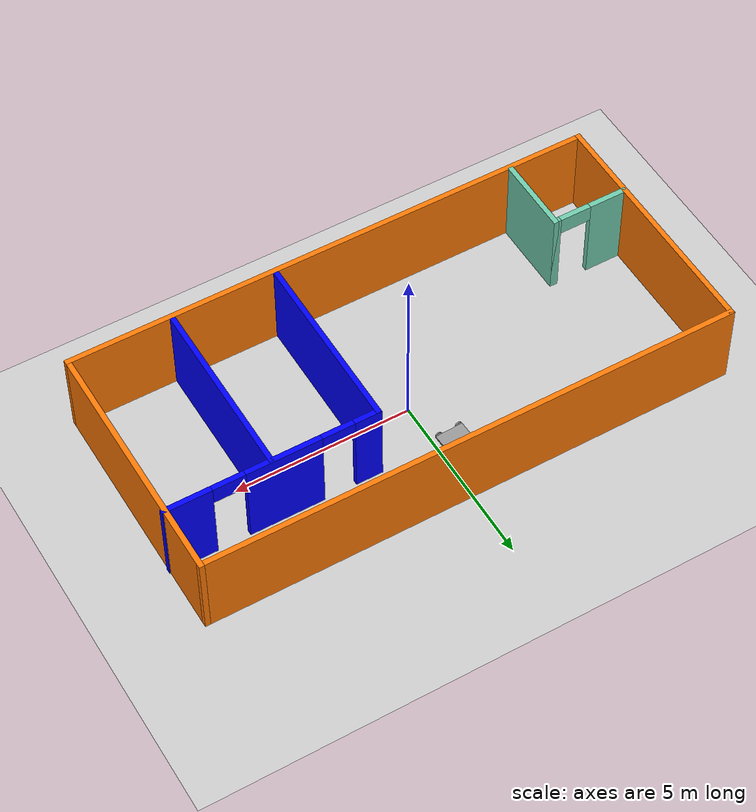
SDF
<sdf version="1.6">
 <world name="default">
  <model name="ground_plane">
   <static>1</static>
   <link name="link">
    <collision name="collision">
     <geometry><plane><normal>0 0 1</normal><size>100 100</size></plane></geometry>
     <surface>
      <contact><collide_bitmask>65535</collide_bitmask></contact>
      <friction><ode><mu>100</mu><mu2>50</mu2></ode></friction>
     </surface>
    </collision>
    <visual name="visual">
     <cast_shadows>0</cast_shadows>
     <geometry><plane><normal>0 0 1</normal><size>100 100</size></plane></geometry>
     <material>
      <script><uri>file://media/materials/scripts/gazebo.material</uri><name>Gazebo/Grey</name></script>
     </material>
    </visual>
   </link>
  </model>
  <model name="lab_space">
   <pose>-0.049343 -0.43499 0 0 -0 0</pose>
   <link name="Wall_0">
    <collision name="Wall_0_Collision">
     <geometry><box><size>15.15 0.15 2.5</size></box></geometry>
     <pose>0 0 1.25 0 -0 0</pose>
    </collision>
    <visual name="Wall_0_Visual">
     <pose>0 0 1.25 0 -0 0</pose>
     <geometry><box><size>15.15 0.15 2.5</size></box></geometry>
     <material>
      <script><uri>file://media/materials/scripts/gazebo.material</uri><name>Gazebo/Grey</name></script>
      <ambient>0.996078 0.47451 0.0196078 1</ambient>
     </material>
     <meta><layer>0</layer></meta>
    </visual>
    <pose>-0.015126 3.5 0 0 -0 3.14159</pose>
   </link>
   <link name="Wall_10">
    <collision name="Wall_10_Collision">
     <geometry><box><size>5.25 0.15 2.5</size></box></geometry>
     <pose>0 0 1.25 0 -0 0</pose>
    </collision>
    <visual name="Wall_10_Visual">
     <pose>0 0 1.25 0 -0 0</pose>
     <geometry><box><size>5.25 0.15 2.5</size></box></geometry>
     <material>
      <script><uri>file://media/materials/scripts/gazebo.material</uri><name>Gazebo/Grey</name></script>
      <ambient>0 0 1 1</ambient>
     </material>
     <meta><layer>0</layer></meta>
    </visual>
    <pose>1.6655 -0.845567 0 0 0 -1.5708</pose>
   </link>
   <link name="Wall_12">
    <collision name="Wall_12_Collision">
     <geometry><box><size>5.25 0.15 2.5</size></box></geometry>
     <pose>0 0 1.25 0 -0 0</pose>
    </collision>
    <visual name="Wall_12_Visual">
     <pose>0 0 1.25 0 -0 0</pose>
     <geometry><box><size>5.25 0.15 2.5</size></box></geometry>
     <material>
      <script><uri>file://media/materials/scripts/gazebo.material</uri><name>Gazebo/Grey</name></script>
      <ambient>0 0 1 1</ambient>
     </material>
     <meta><layer>0</layer></meta>
    </visual>
    <pose>4.6155 -0.885567 0 0 0 -1.5708</pose>
   </link>
   <link name="Wall_2">
    <collision name="Wall_2_Collision">
     <geometry><box><size>7.15 0.15 2.5</size></box></geometry>
     <pose>0 0 1.25 0 -0 0</pose>
    </collision>
    <visual name="Wall_2_Visual">
     <pose>0 0 1.25 0 -0 0</pose>
     <geometry><box><size>7.15 0.15 2.5</size></box></geometry>
     <material>
      <script><uri>file://media/materials/scripts/gazebo.material</uri><name>Gazebo/Grey</name></script>
      <ambient>0.996078 0.47451 0.0196078 1</ambient>
     </material>
     <meta><layer>0</layer></meta>
    </visual>
    <pose>-7.51513 0 0 0 0 -1.5708</pose>
   </link>
   <link name="Wall_3">
    <collision name="Wall_3_Collision">
     <geometry><box><size>15.1508 0.15 2.5</size></box></geometry>
     <pose>0 0 1.25 0 -0 0</pose>
    </collision>
    <visual name="Wall_3_Visual">
     <pose>0 0 1.25 0 -0 0</pose>
     <geometry><box><size>15.1508 0.15 2.5</size></box></geometry>
     <material>
      <script><uri>file://media/materials/scripts/gazebo.material</uri><name>Gazebo/Grey</name></script>
      <ambient>0.996078 0.47451 0.0196078 1</ambient>
     </material>
     <meta><layer>0</layer></meta>
    </visual>
    <pose>-0.015126 -3.5 0 0 -0 0</pose>
   </link>
   <link name="Wall_4">
    <collision name="Wall_4_Collision">
     <geometry><box><size>7.15 0.15 2.5</size></box></geometry>
     <pose>0 0 1.25 0 -0 0</pose>
    </collision>
    <visual name="Wall_4_Visual">
     <pose>0 0 1.25 0 -0 0</pose>
     <geometry><box><size>7.15 0.15 2.5</size></box></geometry>
     <material>
      <script><uri>file://media/materials/scripts/gazebo.material</uri><name>Gazebo/Grey</name></script>
      <ambient>0.996078 0.47451 0.0196078 1</ambient>
     </material>
     <meta><layer>0</layer></meta>
    </visual>
    <pose>7.48487 0 0 0 -0 1.5708</pose>
   </link>
   <link name="Wall_6">
    <pose>-6.4145 -1.29557 0 0 -0 0</pose>
    <visual name="Wall_6_Visual_0">
     <pose>-0.5625 0 1.25 0 -0 0</pose>
     <geometry><box><size>1.125 0.15 2.5</size></box></geometry>
     <material>
      <script><uri>file://media/materials/scripts/gazebo.material</uri><name>Gazebo/Grey</name></script>
      <ambient>0.435294 0.796078 0.67451 1</ambient>
     </material>
     <meta><layer>0</layer></meta>
    </visual>
    <collision name="Wall_6_Collision_0">
     <geometry><box><size>1.125 0.15 2.5</size></box></geometry>
     <pose>-0.5625 0 1.25 0 -0 0</pose>
    </collision>
    <visual name="Wall_6_Visual_1">
     <pose>1.0125 0 1.25 0 -0 0</pose>
     <geometry><box><size>0.225 0.15 2.5</size></box></geometry>
     <material>
      <script><uri>file://media/materials/scripts/gazebo.material</uri><name>Gazebo/Grey</name></script>
      <ambient>0.435294 0.796078 0.67451 1</ambient>
     </material>
     <meta><layer>0</layer></meta>
    </visual>
    <collision name="Wall_6_Collision_1">
     <geometry><box><size>0.225 0.15 2.5</size></box></geometry>
     <pose>1.0125 0 1.25 0 -0 0</pose>
    </collision>
    <visual name="Wall_6_Visual_2">
     <pose>0.45 0 2.25 0 -0 0</pose>
     <geometry><box><size>0.9 0.15 0.5</size></box></geometry>
     <material>
      <script><uri>file://media/materials/scripts/gazebo.material</uri><name>Gazebo/Grey</name></script>
      <ambient>0.435294 0.796078 0.67451 1</ambient>
     </material>
     <meta><layer>0</layer></meta>
    </visual>
    <collision name="Wall_6_Collision_2">
     <geometry><box><size>0.9 0.15 0.5</size></box></geometry>
     <pose>0.45 0 2.25 0 -0 0</pose>
    </collision>
   </link>
   <link name="Wall_7">
    <collision name="Wall_7_Collision">
     <geometry><box><size>2.25 0.15 2.5</size></box></geometry>
     <pose>0 0 1.25 0 -0 0</pose>
    </collision>
    <visual name="Wall_7_Visual">
     <pose>0 0 1.25 0 -0 0</pose>
     <geometry><box><size>2.25 0.15 2.5</size></box></geometry>
     <material>
      <script><uri>file://media/materials/scripts/gazebo.material</uri><name>Gazebo/Grey</name></script>
      <ambient>0.435294 0.796078 0.67451 1</ambient>
     </material>
     <meta><layer>0</layer></meta>
    </visual>
    <pose>-5.3645 -2.34557 0 0 0 -1.5708</pose>
   </link>
   <link name="Wall_9">
    <pose>4.5905 1.70443 0 0 -0 3.14159</pose>
    <visual name="Wall_9_Visual_0">
     <pose>-2.3275 0 1.25 0 -0 0</pose>
     <geometry><box><size>1.345 0.15 2.5</size></box></geometry>
     <material>
      <script><uri>file://media/materials/scripts/gazebo.material</uri><name>Gazebo/Grey</name></script>
      <ambient>0 0 1 1</ambient>
     </material>
     <meta><layer>0</layer></meta>
    </visual>
    <collision name="Wall_9_Collision_0">
     <geometry><box><size>1.345 0.15 2.5</size></box></geometry>
     <pose>-2.3275 0 1.25 0 -0 0</pose>
    </collision>
    <visual name="Wall_9_Visual_1">
     <pose>0.295 0 1.25 0 -0 0</pose>
     <geometry><box><size>2.1 0.15 2.5</size></box></geometry>
     <material>
      <script><uri>file://media/materials/scripts/gazebo.material</uri><name>Gazebo/Grey</name></script>
      <ambient>0 0 1 1</ambient>
     </material>
     <meta><layer>0</layer></meta>
    </visual>
    <collision name="Wall_9_Collision_1">
     <geometry><box><size>2.1 0.15 2.5</size></box></geometry>
     <pose>0.295 0 1.25 0 -0 0</pose>
    </collision>
    <visual name="Wall_9_Visual_2">
     <pose>2.6225 0 1.25 0 -0 0</pose>
     <geometry><box><size>0.755 0.15 2.5</size></box></geometry>
     <material>
      <script><uri>file://media/materials/scripts/gazebo.material</uri><name>Gazebo/Grey</name></script>
      <ambient>0 0 1 1</ambient>
     </material>
     <meta><layer>0</layer></meta>
    </visual>
    <collision name="Wall_9_Collision_2">
     <geometry><box><size>0.755 0.15 2.5</size></box></geometry>
     <pose>2.6225 0 1.25 0 -0 0</pose>
    </collision>
    <visual name="Wall_9_Visual_3">
     <pose>-1.205 0 2.25 0 -0 0</pose>
     <geometry><box><size>0.9 0.15 0.5</size></box></geometry>
     <material>
      <script><uri>file://media/materials/scripts/gazebo.material</uri><name>Gazebo/Grey</name></script>
      <ambient>0 0 1 1</ambient>
     </material>
     <meta><layer>0</layer></meta>
    </visual>
    <collision name="Wall_9_Collision_3">
     <geometry><box><size>0.9 0.15 0.5</size></box></geometry>
     <pose>-1.205 0 2.25 0 -0 0</pose>
    </collision>
    <visual name="Wall_9_Visual_4">
     <pose>1.795 0 2.25 0 -0 0</pose>
     <geometry><box><size>0.9 0.15 0.5</size></box></geometry>
     <material>
      <script><uri>file://media/materials/scripts/gazebo.material</uri><name>Gazebo/Grey</name></script>
      <ambient>0 0 1 1</ambient>
     </material>
     <meta><layer>0</layer></meta>
    </visual>
    <collision name="Wall_9_Collision_4">
     <geometry><box><size>0.9 0.15 0.5</size></box></geometry>
     <pose>1.795 0 2.25 0 -0 0</pose>
    </collision>
   </link>
   <static>1</static>
  </model>
  <model name="fourwheeledrobot">
   <link name="link_0">
    <inertial>
     <mass>1</mass>
     <inertia>
      <ixx>0.166667</ixx>
      <ixy>0</ixy>
      <ixz>0</ixz>
      <iyy>0.166667</iyy>
      <iyz>0</iyz>
      <izz>0.166667</izz>
     </inertia>
    </inertial>
    <visual name="visual">
     <geometry><box><size>0.8 0.5 0.05</size></box></geometry>
     <material>
      <lighting>1</lighting>
      <script><uri>file://media/materials/scripts/gazebo.material</uri><name>Gazebo/Grey</name></script>
      <shader type="pixel"><normal_map>__default__</normal_map></shader>
      <ambient>0.3 0.3 0.3 1</ambient>
      <diffuse>0.7 0.7 0.7 1</diffuse>
      <specular>0.01 0.01 0.01 1</specular>
      <emissive>0 0 0 1</emissive>
     </material>
    </visual>
    <collision name="collision">
     <geometry><box><size>0.8 0.5 0.05</size></box></geometry>
     <surface>
      <friction>
       <ode><mu>1</mu><mu2>1</mu2><fdir1>0 0 0</fdir1><slip1>0</slip1><slip2>0</slip2></ode>
       <torsional>
        <coefficient>1</coefficient>
        <patch_radius>0</patch_radius>
        <surface_radius>0</surface_radius>
        <use_patch_radius>1</use_patch_radius>
        <ode><slip>0</slip></ode>
       </torsional>
      </friction>
      <bounce><restitution_coefficient>0</restitution_coefficient><threshold>1e+06</threshold></bounce>
      <contact>
       <collide_without_contact>0</collide_without_contact>
       <collide_without_contact_bitmask>1</collide_without_contact_bitmask>
       <collide_bitmask>1</collide_bitmask>
       <ode>
        <soft_cfm>0</soft_cfm>
        <soft_erp>0.2</soft_erp>
        <kp>1e+13</kp>
        <kd>1</kd>
        <max_vel>0.01</max_vel>
        <min_depth>0</min_depth>
       </ode>
       <bullet>
        <split_impulse>1</split_impulse>
        <split_impulse_penetration_threshold>-0.01</split_impulse_penetration_threshold>
        <soft_cfm>0</soft_cfm>
        <soft_erp>0.2</soft_erp>
        <kp>1e+13</kp>
        <kd>1</kd>
       </bullet>
      </contact>
     </surface>
    </collision>
   </link>
   <link name="link_1">
    <pose>0.3 0.265 0 0 -0 0</pose>
    <inertial>
     <mass>1</mass>
     <inertia><ixx>0.145833</ixx><ixy>0</ixy><ixz>0</ixz><iyy>0.145833</iyy><iyz>0</iyz><izz>0.125</izz></inertia>
     <pose>0 0 0 1.5707 -0 0</pose>
    </inertial>
    <visual name="visual">
     <pose>0 0 0 1.5707 -0 0</pose>
     <geometry><cylinder><radius>0.1</radius><length>0.03</length></cylinder></geometry>
     <material>
      <lighting>1</lighting>
      <script><uri>file://media/materials/scripts/gazebo.material</uri><name>Gazebo/Grey</name></script>
      <shader type="pixel"><normal_map>__default__</normal_map></shader>
      <ambient>0.3 0.3 0.3 1</ambient>
      <diffuse>0.7 0.7 0.7 1</diffuse>
      <specular>0.01 0.01 0.01 1</specular>
      <emissive>0 0 0 1</emissive>
     </material>
    </visual>
    <collision name="collision">
     <pose>0 0 0 1.5707 -0 0</pose>
     <geometry><cylinder><radius>0.1</radius><length>0.03</length></cylinder></geometry>
     <surface>
      <friction>
       <ode><mu>1</mu><mu2>1</mu2><fdir1>0 0 0</fdir1><slip1>0</slip1><slip2>0</slip2></ode>
       <torsional>
        <coefficient>1</coefficient>
        <patch_radius>0</patch_radius>
        <surface_radius>0</surface_radius>
        <use_patch_radius>1</use_patch_radius>
        <ode><slip>0</slip></ode>
       </torsional>
      </friction>
      <bounce><restitution_coefficient>0</restitution_coefficient><threshold>1e+06</threshold></bounce>
      <contact>
       <collide_without_contact>0</collide_without_contact>
       <collide_without_contact_bitmask>1</collide_without_contact_bitmask>
       <collide_bitmask>1</collide_bitmask>
       <ode>
        <soft_cfm>0</soft_cfm>
        <soft_erp>0.2</soft_erp>
        <kp>1e+13</kp>
        <kd>1</kd>
        <max_vel>0.01</max_vel>
        <min_depth>0</min_depth>
       </ode>
       <bullet>
        <split_impulse>1</split_impulse>
        <split_impulse_penetration_threshold>-0.01</split_impulse_penetration_threshold>
        <soft_cfm>0</soft_cfm>
        <soft_erp>0.2</soft_erp>
        <kp>1e+13</kp>
        <kd>1</kd>
       </bullet>
      </contact>
     </surface>
    </collision>
   </link>
   <link name="link_1_clone">
    <pose>-0.3 0.265 0 0 -0 0</pose>
    <inertial>
     <mass>1</mass>
     <inertia><ixx>0.145833</ixx><ixy>0</ixy><ixz>0</ixz><iyy>0.145833</iyy><iyz>0</iyz><izz>0.125</izz></inertia>
     <pose>0 0 0 1.5707 -0 0</pose>
    </inertial>
    <visual name="visual">
     <pose>0 0 0 1.5707 -0 0</pose>
     <geometry><cylinder><radius>0.1</radius><length>0.03</length></cylinder></geometry>
     <material>
      <lighting>1</lighting>
      <script><uri>file://media/materials/scripts/gazebo.material</uri><name>Gazebo/Grey</name></script>
      <shader type="pixel"><normal_map>__default__</normal_map></shader>
      <ambient>0.3 0.3 0.3 1</ambient>
      <diffuse>0.7 0.7 0.7 1</diffuse>
      <specular>0.01 0.01 0.01 1</specular>
      <emissive>0 0 0 1</emissive>
     </material>
    </visual>
    <collision name="collision">
     <pose>0 0 0 1.5707 -0 0</pose>
     <geometry><cylinder><radius>0.1</radius><length>0.03</length></cylinder></geometry>
     <surface>
      <friction>
       <ode><mu>1</mu><mu2>1</mu2><fdir1>0 0 0</fdir1><slip1>0</slip1><slip2>0</slip2></ode>
       <torsional>
        <coefficient>1</coefficient>
        <patch_radius>0</patch_radius>
        <surface_radius>0</surface_radius>
        <use_patch_radius>1</use_patch_radius>
        <ode><slip>0</slip></ode>
       </torsional>
      </friction>
      <bounce><restitution_coefficient>0</restitution_coefficient><threshold>1e+06</threshold></bounce>
      <contact>
       <collide_without_contact>0</collide_without_contact>
       <collide_without_contact_bitmask>1</collide_without_contact_bitmask>
       <collide_bitmask>1</collide_bitmask>
       <ode>
        <soft_cfm>0</soft_cfm>
        <soft_erp>0.2</soft_erp>
        <kp>1e+13</kp>
        <kd>1</kd>
        <max_vel>0.01</max_vel>
        <min_depth>0</min_depth>
       </ode>
       <bullet>
        <split_impulse>1</split_impulse>
        <split_impulse_penetration_threshold>-0.01</split_impulse_penetration_threshold>
        <soft_cfm>0</soft_cfm>
        <soft_erp>0.2</soft_erp>
        <kp>1e+13</kp>
        <kd>1</kd>
       </bullet>
      </contact>
     </surface>
    </collision>
   </link>
   <link name="link_1_clone_0">
    <pose>0.3 -0.265 0 0 -0 0</pose>
    <inertial>
     <mass>1</mass>
     <inertia><ixx>0.145833</ixx><ixy>0</ixy><ixz>0</ixz><iyy>0.145833</iyy><iyz>0</iyz><izz>0.125</izz></inertia>
     <pose>0 0 0 1.5707 -0 0</pose>
    </inertial>
    <visual name="visual">
     <pose>0 0 0 1.5707 -0 0</pose>
     <geometry><cylinder><radius>0.1</radius><length>0.03</length></cylinder></geometry>
     <material>
      <lighting>1</lighting>
      <script><uri>file://media/materials/scripts/gazebo.material</uri><name>Gazebo/Grey</name></script>
      <shader type="pixel"><normal_map>__default__</normal_map></shader>
      <ambient>0.3 0.3 0.3 1</ambient>
      <diffuse>0.7 0.7 0.7 1</diffuse>
      <specular>0.01 0.01 0.01 1</specular>
      <emissive>0 0 0 1</emissive>
     </material>
    </visual>
    <collision name="collision">
     <pose>0 0 0 1.5707 -0 0</pose>
     <geometry><cylinder><radius>0.1</radius><length>0.03</length></cylinder></geometry>
     <surface>
      <friction>
       <ode><mu>1</mu><mu2>1</mu2><fdir1>0 0 0</fdir1><slip1>0</slip1><slip2>0</slip2></ode>
       <torsional>
        <coefficient>1</coefficient>
        <patch_radius>0</patch_radius>
        <surface_radius>0</surface_radius>
        <use_patch_radius>1</use_patch_radius>
        <ode><slip>0</slip></ode>
       </torsional>
      </friction>
      <bounce><restitution_coefficient>0</restitution_coefficient><threshold>1e+06</threshold></bounce>
      <contact>
       <collide_without_contact>0</collide_without_contact>
       <collide_without_contact_bitmask>1</collide_without_contact_bitmask>
       <collide_bitmask>1</collide_bitmask>
       <ode>
        <soft_cfm>0</soft_cfm>
        <soft_erp>0.2</soft_erp>
        <kp>1e+13</kp>
        <kd>1</kd>
        <max_vel>0.01</max_vel>
        <min_depth>0</min_depth>
       </ode>
       <bullet>
        <split_impulse>1</split_impulse>
        <split_impulse_penetration_threshold>-0.01</split_impulse_penetration_threshold>
        <soft_cfm>0</soft_cfm>
        <soft_erp>0.2</soft_erp>
        <kp>1e+13</kp>
        <kd>1</kd>
       </bullet>
      </contact>
     </surface>
    </collision>
   </link>
   <link name="link_1_clone_1">
    <pose>-0.3 -0.265 0 0 -0 0</pose>
    <inertial>
     <mass>1</mass>
     <inertia><ixx>0.145833</ixx><ixy>0</ixy><ixz>0</ixz><iyy>0.145833</iyy><iyz>0</iyz><izz>0.125</izz></inertia>
     <pose>0 0 0 1.5707 -0 0</pose>
    </inertial>
    <visual name="visual">
     <pose>0 0 0 1.5707 -0 0</pose>
     <geometry><cylinder><radius>0.1</radius><length>0.03</length></cylinder></geometry>
     <material>
      <lighting>1</lighting>
      <script><uri>file://media/materials/scripts/gazebo.material</uri><name>Gazebo/Grey</name></script>
      <shader type="pixel"><normal_map>__default__</normal_map></shader>
      <ambient>0.3 0.3 0.3 1</ambient>
      <diffuse>0.7 0.7 0.7 1</diffuse>
      <specular>0.01 0.01 0.01 1</specular>
      <emissive>0 0 0 1</emissive>
     </material>
    </visual>
    <collision name="collision">
     <pose>0 0 0 1.5707 -0 0</pose>
     <geometry><cylinder><radius>0.1</radius><length>0.03</length></cylinder></geometry>
     <surface>
      <friction>
       <ode><mu>1</mu><mu2>1</mu2><fdir1>0 0 0</fdir1><slip1>0</slip1><slip2>0</slip2></ode>
       <torsional>
        <coefficient>1</coefficient>
        <patch_radius>0</patch_radius>
        <surface_radius>0</surface_radius>
        <use_patch_radius>1</use_patch_radius>
        <ode><slip>0</slip></ode>
       </torsional>
      </friction>
      <bounce><restitution_coefficient>0</restitution_coefficient><threshold>1e+06</threshold></bounce>
      <contact>
       <collide_without_contact>0</collide_without_contact>
       <collide_without_contact_bitmask>1</collide_without_contact_bitmask>
       <collide_bitmask>1</collide_bitmask>
       <ode>
        <soft_cfm>0</soft_cfm>
        <soft_erp>0.2</soft_erp>
        <kp>1e+13</kp>
        <kd>1</kd>
        <max_vel>0.01</max_vel>
        <min_depth>0</min_depth>
       </ode>
       <bullet>
        <split_impulse>1</split_impulse>
        <split_impulse_penetration_threshold>-0.01</split_impulse_penetration_threshold>
        <soft_cfm>0</soft_cfm>
        <soft_erp>0.2</soft_erp>
        <kp>1e+13</kp>
        <kd>1</kd>
       </bullet>
      </contact>
     </surface>
    </collision>
   </link>
   <joint name="link_0_JOINT_4" type="revolute">
    <parent>link_0</parent>
    <child>link_1</child>
    <axis>
     <xyz>0 1 0</xyz>
     <use_parent_model_frame>0</use_parent_model_frame>
     <limit>
      <lower>-1.79769e+308</lower>
      <upper>1.79769e+308</upper>
      <effort>-1</effort>
      <velocity>-1</velocity>
     </limit>
     <dynamics>
      <spring_reference>0</spring_reference>
      <spring_stiffness>0</spring_stiffness>
      <damping>0</damping>
     </dynamics>
    </axis>
    <physics>
     <ode><limit><cfm>0</cfm><erp>0.2</erp></limit><suspension><cfm>0</cfm><erp>0.2</erp></suspension></ode>
    </physics>
   </joint>
   <joint name="link_0_JOINT_5" type="revolute">
    <parent>link_0</parent>
    <child>link_1_clone</child>
    <axis>
     <xyz>0 1 0</xyz>
     <use_parent_model_frame>0</use_parent_model_frame>
     <limit>
      <lower>-1.79769e+308</lower>
      <upper>1.79769e+308</upper>
      <effort>-1</effort>
      <velocity>-1</velocity>
     </limit>
     <dynamics>
      <spring_reference>0</spring_reference>
      <spring_stiffness>0</spring_stiffness>
      <damping>0</damping>
     </dynamics>
    </axis>
    <physics>
     <ode><limit><cfm>0</cfm><erp>0.2</erp></limit><suspension><cfm>0</cfm><erp>0.2</erp></suspension></ode>
    </physics>
   </joint>
   <joint name="link_0_JOINT_6" type="revolute">
    <parent>link_0</parent>
    <child>link_1_clone_0</child>
    <axis>
     <xyz>0 1 0</xyz>
     <use_parent_model_frame>0</use_parent_model_frame>
     <limit>
      <lower>-1.79769e+308</lower>
      <upper>1.79769e+308</upper>
      <effort>-1</effort>
      <velocity>-1</velocity>
     </limit>
     <dynamics>
      <spring_reference>0</spring_reference>
      <spring_stiffness>0</spring_stiffness>
      <damping>0</damping>
     </dynamics>
    </axis>
    <physics>
     <ode><limit><cfm>0</cfm><erp>0.2</erp></limit><suspension><cfm>0</cfm><erp>0.2</erp></suspension></ode>
    </physics>
   </joint>
   <joint name="link_0_JOINT_7" type="revolute">
    <parent>link_0</parent>
    <child>link_1_clone_1</child>
    <axis>
     <xyz>0 1 0</xyz>
     <use_parent_model_frame>0</use_parent_model_frame>
     <limit>
      <lower>-1.79769e+308</lower>
      <upper>1.79769e+308</upper>
      <effort>-1</effort>
      <velocity>-1</velocity>
     </limit>
     <dynamics>
      <spring_reference>0</spring_reference>
      <spring_stiffness>0</spring_stiffness>
      <damping>0</damping>
     </dynamics>
    </axis>
    <physics>
     <ode><limit><cfm>0</cfm><erp>0.2</erp></limit><suspension><cfm>0</cfm><erp>0.2</erp></suspension></ode>
    </physics>
   </joint>
   <static>0</static>
   <pose>-0.531329 1.37802 0.100001 -2e-06 -0 0.043398</pose>
  </model>
  <model name="table">
   <static>1</static>
   <link name="link">
    <collision name="surface">
     <pose>0 0 1 0 -0 0</pose>
     <geometry><box><size>1.5 0.8 0.03</size></box></geometry>
     <surface><friction><ode><mu>0.6</mu><mu2>0.6</mu2></ode></friction></surface>
    </collision>
    <visual name="visual1">
     <pose>0 0 1 0 -0 0</pose>
     <geometry><box><size>1.5 0.8 0.03</size></box></geometry>
     <material>
      <script><uri>file://media/materials/scripts/gazebo.material</uri><name>Gazebo/Wood</name></script>
     </material>
    </visual>
    <collision name="front_left_leg">
     <pose>0.68 0.38 0.5 0 -0 0</pose>
     <geometry><cylinder><radius>0.02</radius><length>1</length></cylinder></geometry>
    </collision>
    <visual name="front_left_leg">
     <pose>0.68 0.38 0.5 0 -0 0</pose>
     <geometry><cylinder><radius>0.02</radius><length>1</length></cylinder></geometry>
     <material>
      <script><uri>file://media/materials/scripts/gazebo.material</uri><name>Gazebo/Grey</name></script>
     </material>
    </visual>
    <collision name="front_right_leg">
     <pose>0.68 -0.38 0.5 0 -0 0</pose>
     <geometry><cylinder><radius>0.02</radius><length>1</length></cylinder></geometry>
    </collision>
    <visual name="front_right_leg">
     <pose>0.68 -0.38 0.5 0 -0 0</pose>
     <geometry><cylinder><radius>0.02</radius><length>1</length></cylinder></geometry>
     <material>
      <script><uri>file://media/materials/scripts/gazebo.material</uri><name>Gazebo/Grey</name></script>
     </material>
    </visual>
    <collision name="back_right_leg">
     <pose>-0.68 -0.38 0.5 0 -0 0</pose>
     <geometry><cylinder><radius>0.02</radius><length>1</length></cylinder></geometry>
    </collision>
    <visual name="back_right_leg">
     <pose>-0.68 -0.38 0.5 0 -0 0</pose>
     <geometry><cylinder><radius>0.02</radius><length>1</length></cylinder></geometry>
     <material>
      <script><uri>file://media/materials/scripts/gazebo.material</uri><name>Gazebo/Grey</name></script>
     </material>
    </visual>
    <collision name="back_left_leg">
     <pose>-0.68 0.38 0.5 0 -0 0</pose>
     <geometry><cylinder><radius>0.02</radius><length>1</length></cylinder></geometry>
    </collision>
    <visual name="back_left_leg">
     <pose>-0.68 0.38 0.5 0 -0 0</pose>
     <geometry><cylinder><radius>0.02</radius><length>1</length></cylinder></geometry>
     <material>
      <script><uri>file://media/materials/scripts/gazebo.material</uri><name>Gazebo/Grey</name></script>
     </material>
    </visual>
   </link>
   <pose>0.003064 2.57966 0 0 -0 0</pose>
  </model>
 </world>
</sdf>
